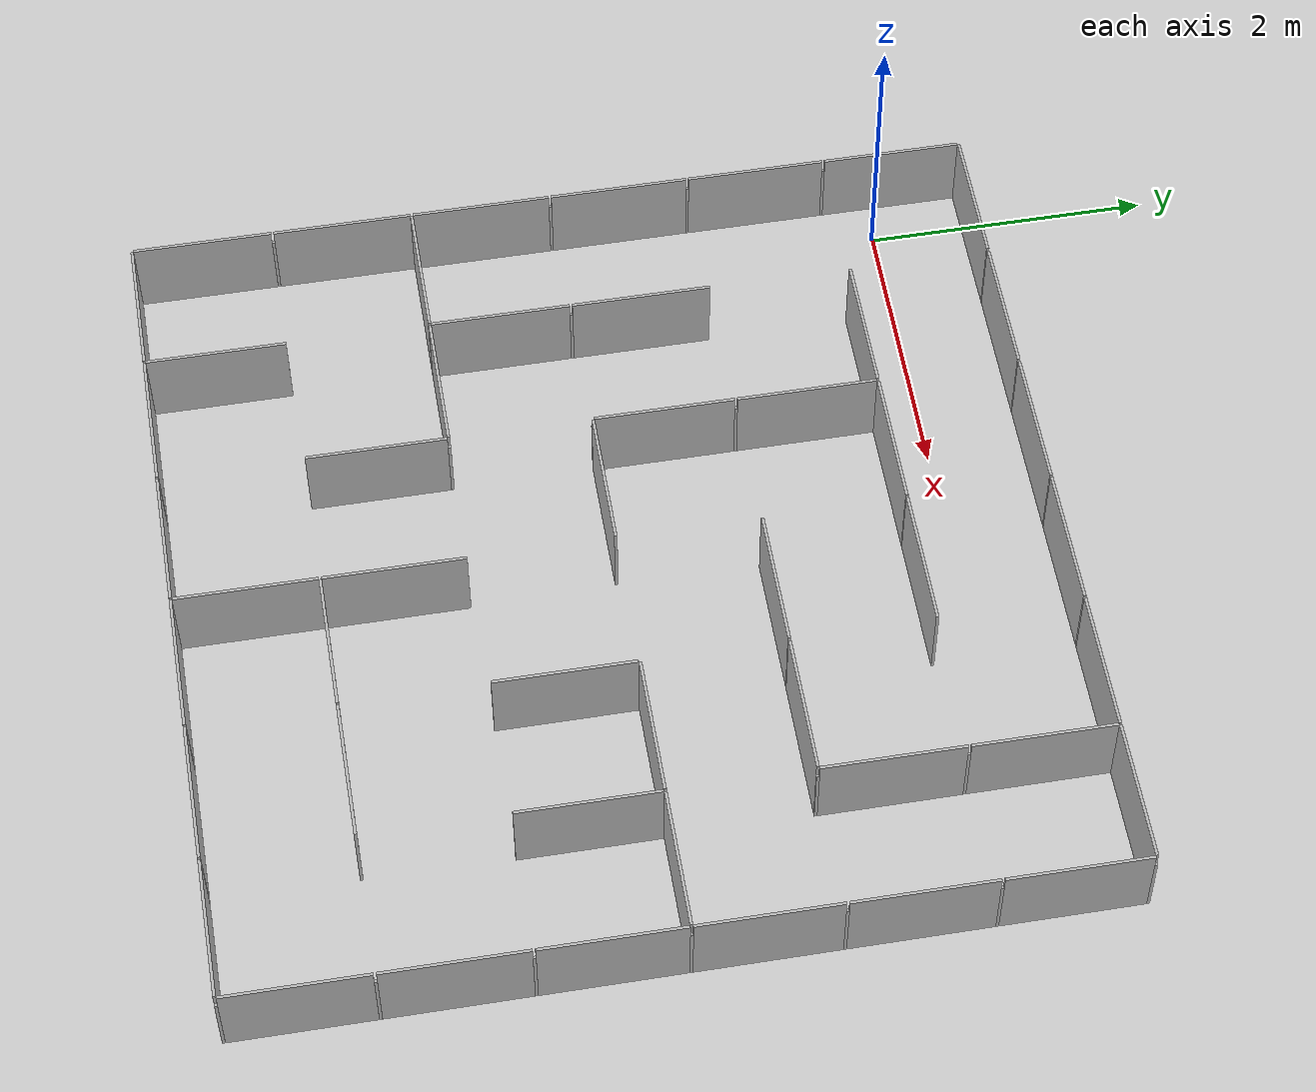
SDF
<sdf version="1.7">
 <world name="default">
  <light name="sun" type="directional">
   <pose>0 0 10 0 -0 0</pose>
   <diffuse>0.8 0.8 0.8 1</diffuse>
   <specular>0.2 0.2 0.2 1</specular>
   <attenuation>
    <range>1000</range>
    <constant>0.9</constant>
    <linear>0.01</linear>
    <quadratic>0.001</quadratic>
   </attenuation>
   <direction>-0.5 0.1 -0.9</direction>
   <spot><inner_angle>0</inner_angle><outer_angle>0</outer_angle><falloff>0</falloff></spot>
  </light>
  <model name="ground_plane">
   <static>1</static>
   <link name="link">
    <collision name="collision">
     <geometry><plane><normal>0 0 1</normal><size>100 100</size></plane></geometry>
     <surface>
      <contact><collide_bitmask>65535</collide_bitmask></contact>
      <friction><ode><mu>100</mu><mu2>50</mu2></ode></friction>
     </surface>
    </collision>
    <visual name="visual">
     <cast_shadows>0</cast_shadows>
     <geometry><plane><normal>0 0 1</normal><size>100 100</size></plane></geometry>
     <material>
      <script><uri>file://media/materials/scripts/gazebo.material</uri><name>Gazebo/Grey</name></script>
     </material>
    </visual>
   </link>
  </model>
  <gravity>0 0 -9.8</gravity>
  <magnetic_field>6e-06 2.3e-05 -4.2e-05</magnetic_field>
  <atmosphere type="adiabatic"/>
  <physics type="ode">
   <max_step_size>0.001</max_step_size>
   <real_time_factor>1</real_time_factor>
   <real_time_update_rate>1000</real_time_update_rate>
  </physics>
  <scene><ambient>0.4 0.4 0.4 1</ambient><background>0.7 0.7 0.7 1</background><shadows>1</shadows></scene>
  <spherical_coordinates>
   <surface_model>EARTH_WGS84</surface_model>
   <latitude_deg>0</latitude_deg>
   <longitude_deg>0</longitude_deg>
   <elevation>0</elevation>
   <heading_deg>0</heading_deg>
  </spherical_coordinates>
  <model name="maze_4_metal_6x6">
   <frame name="metal_plate_0_0_b::__model__" attached_to="metal_plate_0_0_b::main">
    <pose relative_to="__model__">0 0 0 0 -0 1.571</pose>
   </frame>
   <static>1</static>
   <link name="metal_plate_0_0_b::main">
    <pose relative_to="metal_plate_0_0_b::__model__">0 0 0 0 -0 0</pose>
    <collision name="collision">
     <pose>0 -0.5 0.3 -1.571 -0 -1.571</pose>
     <geometry><box><size>0.98 0.6 0.02</size></box></geometry>
    </collision>
    <visual name="visual">
     <pose>0.01 -0.01 0 3.14159 -1.57059 3.14159</pose>
     <geometry><mesh><scale>1 1 1</scale><uri>model://metal_plate/meshes/metal_plate.dae</uri></mesh></geometry>
    </visual>
   </link>
   <frame name="metal_joint_0_0_b::__model__" attached_to="metal_joint_0_0_b::link">
    <pose relative_to="__model__">0 0 0 0 -0 0</pose>
   </frame>
   <static>1</static>
   <link name="metal_joint_0_0_b::link">
    <pose relative_to="metal_joint_0_0_b::__model__">0 0 0.25 0 -0 0</pose>
    <collision name="metal_joint_01"><geometry><box><size>0.02 0.02 0.5</size></box></geometry></collision>
    <visual name="visual_metal_joint_0">
     <geometry><box><size>0.02 0.02 0.5</size></box></geometry>
     <material>
      <script>
       <uri>model://metal_joint/materials/scripts</uri>
       <uri>model://metal_joint/materials/textures</uri>
       <name>metal_joint</name>
      </script>
     </material>
    </visual>
   </link>
   <frame name="metal_plate_1_0_b::__model__" attached_to="metal_plate_1_0_b::main">
    <pose relative_to="__model__">1 0 0 0 -0 1.571</pose>
   </frame>
   <static>1</static>
   <link name="metal_plate_1_0_b::main">
    <pose relative_to="metal_plate_1_0_b::__model__">0 0 0 0 -0 0</pose>
    <collision name="collision">
     <pose>0 -0.5 0.3 -1.571 -0 -1.571</pose>
     <geometry><box><size>0.98 0.6 0.02</size></box></geometry>
    </collision>
    <visual name="visual">
     <pose>0.01 -0.01 0 3.14159 -1.57059 3.14159</pose>
     <geometry><mesh><scale>1 1 1</scale><uri>model://metal_plate/meshes/metal_plate.dae</uri></mesh></geometry>
    </visual>
   </link>
   <frame name="metal_joint_1_0_b::__model__" attached_to="metal_joint_1_0_b::link">
    <pose relative_to="__model__">1 0 0 0 -0 0</pose>
   </frame>
   <static>1</static>
   <link name="metal_joint_1_0_b::link">
    <pose relative_to="metal_joint_1_0_b::__model__">0 0 0.25 0 -0 0</pose>
    <collision name="metal_joint_01"><geometry><box><size>0.02 0.02 0.5</size></box></geometry></collision>
    <visual name="visual_metal_joint_0">
     <geometry><box><size>0.02 0.02 0.5</size></box></geometry>
     <material>
      <script>
       <uri>model://metal_joint/materials/scripts</uri>
       <uri>model://metal_joint/materials/textures</uri>
       <name>metal_joint</name>
      </script>
     </material>
    </visual>
   </link>
   <frame name="metal_plate_2_0_b::__model__" attached_to="metal_plate_2_0_b::main">
    <pose relative_to="__model__">2 0 0 0 -0 1.571</pose>
   </frame>
   <static>1</static>
   <link name="metal_plate_2_0_b::main">
    <pose relative_to="metal_plate_2_0_b::__model__">0 0 0 0 -0 0</pose>
    <collision name="collision">
     <pose>0 -0.5 0.3 -1.571 -0 -1.571</pose>
     <geometry><box><size>0.98 0.6 0.02</size></box></geometry>
    </collision>
    <visual name="visual">
     <pose>0.01 -0.01 0 3.14159 -1.57059 3.14159</pose>
     <geometry><mesh><scale>1 1 1</scale><uri>model://metal_plate/meshes/metal_plate.dae</uri></mesh></geometry>
    </visual>
   </link>
   <frame name="metal_joint_2_0_b::__model__" attached_to="metal_joint_2_0_b::link">
    <pose relative_to="__model__">2 0 0 0 -0 0</pose>
   </frame>
   <static>1</static>
   <link name="metal_joint_2_0_b::link">
    <pose relative_to="metal_joint_2_0_b::__model__">0 0 0.25 0 -0 0</pose>
    <collision name="metal_joint_01"><geometry><box><size>0.02 0.02 0.5</size></box></geometry></collision>
    <visual name="visual_metal_joint_0">
     <geometry><box><size>0.02 0.02 0.5</size></box></geometry>
     <material>
      <script>
       <uri>model://metal_joint/materials/scripts</uri>
       <uri>model://metal_joint/materials/textures</uri>
       <name>metal_joint</name>
      </script>
     </material>
    </visual>
   </link>
   <frame name="metal_plate_3_0_b::__model__" attached_to="metal_plate_3_0_b::main">
    <pose relative_to="__model__">3 0 0 0 -0 1.571</pose>
   </frame>
   <static>1</static>
   <link name="metal_plate_3_0_b::main">
    <pose relative_to="metal_plate_3_0_b::__model__">0 0 0 0 -0 0</pose>
    <collision name="collision">
     <pose>0 -0.5 0.3 -1.571 -0 -1.571</pose>
     <geometry><box><size>0.98 0.6 0.02</size></box></geometry>
    </collision>
    <visual name="visual">
     <pose>0.01 -0.01 0 3.14159 -1.57059 3.14159</pose>
     <geometry><mesh><scale>1 1 1</scale><uri>model://metal_plate/meshes/metal_plate.dae</uri></mesh></geometry>
    </visual>
   </link>
   <frame name="metal_joint_3_0_b::__model__" attached_to="metal_joint_3_0_b::link">
    <pose relative_to="__model__">3 0 0 0 -0 0</pose>
   </frame>
   <static>1</static>
   <link name="metal_joint_3_0_b::link">
    <pose relative_to="metal_joint_3_0_b::__model__">0 0 0.25 0 -0 0</pose>
    <collision name="metal_joint_01"><geometry><box><size>0.02 0.02 0.5</size></box></geometry></collision>
    <visual name="visual_metal_joint_0">
     <geometry><box><size>0.02 0.02 0.5</size></box></geometry>
     <material>
      <script>
       <uri>model://metal_joint/materials/scripts</uri>
       <uri>model://metal_joint/materials/textures</uri>
       <name>metal_joint</name>
      </script>
     </material>
    </visual>
   </link>
   <frame name="metal_plate_4_0_b::__model__" attached_to="metal_plate_4_0_b::main">
    <pose relative_to="__model__">4 0 0 0 -0 1.571</pose>
   </frame>
   <static>1</static>
   <link name="metal_plate_4_0_b::main">
    <pose relative_to="metal_plate_4_0_b::__model__">0 0 0 0 -0 0</pose>
    <collision name="collision">
     <pose>0 -0.5 0.3 -1.571 -0 -1.571</pose>
     <geometry><box><size>0.98 0.6 0.02</size></box></geometry>
    </collision>
    <visual name="visual">
     <pose>0.01 -0.01 0 3.14159 -1.57059 3.14159</pose>
     <geometry><mesh><scale>1 1 1</scale><uri>model://metal_plate/meshes/metal_plate.dae</uri></mesh></geometry>
    </visual>
   </link>
   <frame name="metal_joint_4_0_b::__model__" attached_to="metal_joint_4_0_b::link">
    <pose relative_to="__model__">4 0 0 0 -0 0</pose>
   </frame>
   <static>1</static>
   <link name="metal_joint_4_0_b::link">
    <pose relative_to="metal_joint_4_0_b::__model__">0 0 0.25 0 -0 0</pose>
    <collision name="metal_joint_01"><geometry><box><size>0.02 0.02 0.5</size></box></geometry></collision>
    <visual name="visual_metal_joint_0">
     <geometry><box><size>0.02 0.02 0.5</size></box></geometry>
     <material>
      <script>
       <uri>model://metal_joint/materials/scripts</uri>
       <uri>model://metal_joint/materials/textures</uri>
       <name>metal_joint</name>
      </script>
     </material>
    </visual>
   </link>
   <frame name="metal_plate_5_0_b::__model__" attached_to="metal_plate_5_0_b::main">
    <pose relative_to="__model__">5 0 0 0 -0 1.571</pose>
   </frame>
   <static>1</static>
   <link name="metal_plate_5_0_b::main">
    <pose relative_to="metal_plate_5_0_b::__model__">0 0 0 0 -0 0</pose>
    <collision name="collision">
     <pose>0 -0.5 0.3 -1.571 -0 -1.571</pose>
     <geometry><box><size>0.98 0.6 0.02</size></box></geometry>
    </collision>
    <visual name="visual">
     <pose>0.01 -0.01 0 3.14159 -1.57059 3.14159</pose>
     <geometry><mesh><scale>1 1 1</scale><uri>model://metal_plate/meshes/metal_plate.dae</uri></mesh></geometry>
    </visual>
   </link>
   <frame name="metal_joint_5_0_b::__model__" attached_to="metal_joint_5_0_b::link">
    <pose relative_to="__model__">5 0 0 0 -0 0</pose>
   </frame>
   <static>1</static>
   <link name="metal_joint_5_0_b::link">
    <pose relative_to="metal_joint_5_0_b::__model__">0 0 0.25 0 -0 0</pose>
    <collision name="metal_joint_01"><geometry><box><size>0.02 0.02 0.5</size></box></geometry></collision>
    <visual name="visual_metal_joint_0">
     <geometry><box><size>0.02 0.02 0.5</size></box></geometry>
     <material>
      <script>
       <uri>model://metal_joint/materials/scripts</uri>
       <uri>model://metal_joint/materials/textures</uri>
       <name>metal_joint</name>
      </script>
     </material>
    </visual>
   </link>
   <frame name="metal_plate_0_6_b::__model__" attached_to="metal_plate_0_6_b::main">
    <pose relative_to="__model__">0 6 0 0 -0 1.571</pose>
   </frame>
   <static>1</static>
   <link name="metal_plate_0_6_b::main">
    <pose relative_to="metal_plate_0_6_b::__model__">0 0 0 0 -0 0</pose>
    <collision name="collision">
     <pose>0 -0.5 0.3 -1.571 -0 -1.571</pose>
     <geometry><box><size>0.98 0.6 0.02</size></box></geometry>
    </collision>
    <visual name="visual">
     <pose>0.01 -0.01 0 3.14159 -1.57059 3.14159</pose>
     <geometry><mesh><scale>1 1 1</scale><uri>model://metal_plate/meshes/metal_plate.dae</uri></mesh></geometry>
    </visual>
   </link>
   <frame name="metal_joint_0_6_b::__model__" attached_to="metal_joint_0_6_b::link">
    <pose relative_to="__model__">0 6 0 0 -0 0</pose>
   </frame>
   <static>1</static>
   <link name="metal_joint_0_6_b::link">
    <pose relative_to="metal_joint_0_6_b::__model__">0 0 0.25 0 -0 0</pose>
    <collision name="metal_joint_01"><geometry><box><size>0.02 0.02 0.5</size></box></geometry></collision>
    <visual name="visual_metal_joint_0">
     <geometry><box><size>0.02 0.02 0.5</size></box></geometry>
     <material>
      <script>
       <uri>model://metal_joint/materials/scripts</uri>
       <uri>model://metal_joint/materials/textures</uri>
       <name>metal_joint</name>
      </script>
     </material>
    </visual>
   </link>
   <frame name="metal_plate_1_6_b::__model__" attached_to="metal_plate_1_6_b::main">
    <pose relative_to="__model__">1 6 0 0 -0 1.571</pose>
   </frame>
   <static>1</static>
   <link name="metal_plate_1_6_b::main">
    <pose relative_to="metal_plate_1_6_b::__model__">0 0 0 0 -0 0</pose>
    <collision name="collision">
     <pose>0 -0.5 0.3 -1.571 -0 -1.571</pose>
     <geometry><box><size>0.98 0.6 0.02</size></box></geometry>
    </collision>
    <visual name="visual">
     <pose>0.01 -0.01 0 3.14159 -1.57059 3.14159</pose>
     <geometry><mesh><scale>1 1 1</scale><uri>model://metal_plate/meshes/metal_plate.dae</uri></mesh></geometry>
    </visual>
   </link>
   <frame name="metal_joint_1_6_b::__model__" attached_to="metal_joint_1_6_b::link">
    <pose relative_to="__model__">1 6 0 0 -0 0</pose>
   </frame>
   <static>1</static>
   <link name="metal_joint_1_6_b::link">
    <pose relative_to="metal_joint_1_6_b::__model__">0 0 0.25 0 -0 0</pose>
    <collision name="metal_joint_01"><geometry><box><size>0.02 0.02 0.5</size></box></geometry></collision>
    <visual name="visual_metal_joint_0">
     <geometry><box><size>0.02 0.02 0.5</size></box></geometry>
     <material>
      <script>
       <uri>model://metal_joint/materials/scripts</uri>
       <uri>model://metal_joint/materials/textures</uri>
       <name>metal_joint</name>
      </script>
     </material>
    </visual>
   </link>
   <frame name="metal_plate_2_6_b::__model__" attached_to="metal_plate_2_6_b::main">
    <pose relative_to="__model__">2 6 0 0 -0 1.571</pose>
   </frame>
   <static>1</static>
   <link name="metal_plate_2_6_b::main">
    <pose relative_to="metal_plate_2_6_b::__model__">0 0 0 0 -0 0</pose>
    <collision name="collision">
     <pose>0 -0.5 0.3 -1.571 -0 -1.571</pose>
     <geometry><box><size>0.98 0.6 0.02</size></box></geometry>
    </collision>
    <visual name="visual">
     <pose>0.01 -0.01 0 3.14159 -1.57059 3.14159</pose>
     <geometry><mesh><scale>1 1 1</scale><uri>model://metal_plate/meshes/metal_plate.dae</uri></mesh></geometry>
    </visual>
   </link>
   <frame name="metal_joint_2_6_b::__model__" attached_to="metal_joint_2_6_b::link">
    <pose relative_to="__model__">2 6 0 0 -0 0</pose>
   </frame>
   <static>1</static>
   <link name="metal_joint_2_6_b::link">
    <pose relative_to="metal_joint_2_6_b::__model__">0 0 0.25 0 -0 0</pose>
    <collision name="metal_joint_01"><geometry><box><size>0.02 0.02 0.5</size></box></geometry></collision>
    <visual name="visual_metal_joint_0">
     <geometry><box><size>0.02 0.02 0.5</size></box></geometry>
     <material>
      <script>
       <uri>model://metal_joint/materials/scripts</uri>
       <uri>model://metal_joint/materials/textures</uri>
       <name>metal_joint</name>
      </script>
     </material>
    </visual>
   </link>
   <frame name="metal_plate_3_6_b::__model__" attached_to="metal_plate_3_6_b::main">
    <pose relative_to="__model__">3 6 0 0 -0 1.571</pose>
   </frame>
   <static>1</static>
   <link name="metal_plate_3_6_b::main">
    <pose relative_to="metal_plate_3_6_b::__model__">0 0 0 0 -0 0</pose>
    <collision name="collision">
     <pose>0 -0.5 0.3 -1.571 -0 -1.571</pose>
     <geometry><box><size>0.98 0.6 0.02</size></box></geometry>
    </collision>
    <visual name="visual">
     <pose>0.01 -0.01 0 3.14159 -1.57059 3.14159</pose>
     <geometry><mesh><scale>1 1 1</scale><uri>model://metal_plate/meshes/metal_plate.dae</uri></mesh></geometry>
    </visual>
   </link>
   <frame name="metal_joint_3_6_b::__model__" attached_to="metal_joint_3_6_b::link">
    <pose relative_to="__model__">3 6 0 0 -0 0</pose>
   </frame>
   <static>1</static>
   <link name="metal_joint_3_6_b::link">
    <pose relative_to="metal_joint_3_6_b::__model__">0 0 0.25 0 -0 0</pose>
    <collision name="metal_joint_01"><geometry><box><size>0.02 0.02 0.5</size></box></geometry></collision>
    <visual name="visual_metal_joint_0">
     <geometry><box><size>0.02 0.02 0.5</size></box></geometry>
     <material>
      <script>
       <uri>model://metal_joint/materials/scripts</uri>
       <uri>model://metal_joint/materials/textures</uri>
       <name>metal_joint</name>
      </script>
     </material>
    </visual>
   </link>
   <frame name="metal_plate_4_6_b::__model__" attached_to="metal_plate_4_6_b::main">
    <pose relative_to="__model__">4 6 0 0 -0 1.571</pose>
   </frame>
   <static>1</static>
   <link name="metal_plate_4_6_b::main">
    <pose relative_to="metal_plate_4_6_b::__model__">0 0 0 0 -0 0</pose>
    <collision name="collision">
     <pose>0 -0.5 0.3 -1.571 -0 -1.571</pose>
     <geometry><box><size>0.98 0.6 0.02</size></box></geometry>
    </collision>
    <visual name="visual">
     <pose>0.01 -0.01 0 3.14159 -1.57059 3.14159</pose>
     <geometry><mesh><scale>1 1 1</scale><uri>model://metal_plate/meshes/metal_plate.dae</uri></mesh></geometry>
    </visual>
   </link>
   <frame name="metal_joint_4_6_b::__model__" attached_to="metal_joint_4_6_b::link">
    <pose relative_to="__model__">4 6 0 0 -0 0</pose>
   </frame>
   <static>1</static>
   <link name="metal_joint_4_6_b::link">
    <pose relative_to="metal_joint_4_6_b::__model__">0 0 0.25 0 -0 0</pose>
    <collision name="metal_joint_01"><geometry><box><size>0.02 0.02 0.5</size></box></geometry></collision>
    <visual name="visual_metal_joint_0">
     <geometry><box><size>0.02 0.02 0.5</size></box></geometry>
     <material>
      <script>
       <uri>model://metal_joint/materials/scripts</uri>
       <uri>model://metal_joint/materials/textures</uri>
       <name>metal_joint</name>
      </script>
     </material>
    </visual>
   </link>
   <frame name="metal_plate_5_6_b::__model__" attached_to="metal_plate_5_6_b::main">
    <pose relative_to="__model__">5 6 0 0 -0 1.571</pose>
   </frame>
   <static>1</static>
   <link name="metal_plate_5_6_b::main">
    <pose relative_to="metal_plate_5_6_b::__model__">0 0 0 0 -0 0</pose>
    <collision name="collision">
     <pose>0 -0.5 0.3 -1.571 -0 -1.571</pose>
     <geometry><box><size>0.98 0.6 0.02</size></box></geometry>
    </collision>
    <visual name="visual">
     <pose>0.01 -0.01 0 3.14159 -1.57059 3.14159</pose>
     <geometry><mesh><scale>1 1 1</scale><uri>model://metal_plate/meshes/metal_plate.dae</uri></mesh></geometry>
    </visual>
   </link>
   <frame name="metal_joint_5_6_b::__model__" attached_to="metal_joint_5_6_b::link">
    <pose relative_to="__model__">5 6 0 0 -0 0</pose>
   </frame>
   <static>1</static>
   <link name="metal_joint_5_6_b::link">
    <pose relative_to="metal_joint_5_6_b::__model__">0 0 0.25 0 -0 0</pose>
    <collision name="metal_joint_01"><geometry><box><size>0.02 0.02 0.5</size></box></geometry></collision>
    <visual name="visual_metal_joint_0">
     <geometry><box><size>0.02 0.02 0.5</size></box></geometry>
     <material>
      <script>
       <uri>model://metal_joint/materials/scripts</uri>
       <uri>model://metal_joint/materials/textures</uri>
       <name>metal_joint</name>
      </script>
     </material>
    </visual>
   </link>
   <frame name="metal_plate_0_0_a::__model__" attached_to="metal_plate_0_0_a::main">
    <pose relative_to="__model__">0 0 0 0 -0 3.14159</pose>
   </frame>
   <static>1</static>
   <link name="metal_plate_0_0_a::main">
    <pose relative_to="metal_plate_0_0_a::__model__">0 0 0 0 -0 0</pose>
    <collision name="collision">
     <pose>0 -0.5 0.3 -1.571 -0 -1.571</pose>
     <geometry><box><size>0.98 0.6 0.02</size></box></geometry>
    </collision>
    <visual name="visual">
     <pose>0.01 -0.01 0 3.14159 -1.57059 3.14159</pose>
     <geometry><mesh><scale>1 1 1</scale><uri>model://metal_plate/meshes/metal_plate.dae</uri></mesh></geometry>
    </visual>
   </link>
   <frame name="metal_joint_6_6_a::__model__" attached_to="metal_joint_6_6_a::link">
    <pose relative_to="__model__">6 6 0 0 -0 0</pose>
   </frame>
   <static>1</static>
   <link name="metal_joint_6_6_a::link">
    <pose relative_to="metal_joint_6_6_a::__model__">0 0 0.25 0 -0 0</pose>
    <collision name="metal_joint_01"><geometry><box><size>0.02 0.02 0.5</size></box></geometry></collision>
    <visual name="visual_metal_joint_0">
     <geometry><box><size>0.02 0.02 0.5</size></box></geometry>
     <material>
      <script>
       <uri>model://metal_joint/materials/scripts</uri>
       <uri>model://metal_joint/materials/textures</uri>
       <name>metal_joint</name>
      </script>
     </material>
    </visual>
   </link>
   <frame name="metal_plate_0_1_a::__model__" attached_to="metal_plate_0_1_a::main">
    <pose relative_to="__model__">0 1 0 0 -0 3.14159</pose>
   </frame>
   <static>1</static>
   <link name="metal_plate_0_1_a::main">
    <pose relative_to="metal_plate_0_1_a::__model__">0 0 0 0 -0 0</pose>
    <collision name="collision">
     <pose>0 -0.5 0.3 -1.571 -0 -1.571</pose>
     <geometry><box><size>0.98 0.6 0.02</size></box></geometry>
    </collision>
    <visual name="visual">
     <pose>0.01 -0.01 0 3.14159 -1.57059 3.14159</pose>
     <geometry><mesh><scale>1 1 1</scale><uri>model://metal_plate/meshes/metal_plate.dae</uri></mesh></geometry>
    </visual>
   </link>
   <frame name="metal_joint_0_1_a::__model__" attached_to="metal_joint_0_1_a::link">
    <pose relative_to="__model__">0 1 0 0 -0 0</pose>
   </frame>
   <static>1</static>
   <link name="metal_joint_0_1_a::link">
    <pose relative_to="metal_joint_0_1_a::__model__">0 0 0.25 0 -0 0</pose>
    <collision name="metal_joint_01"><geometry><box><size>0.02 0.02 0.5</size></box></geometry></collision>
    <visual name="visual_metal_joint_0">
     <geometry><box><size>0.02 0.02 0.5</size></box></geometry>
     <material>
      <script>
       <uri>model://metal_joint/materials/scripts</uri>
       <uri>model://metal_joint/materials/textures</uri>
       <name>metal_joint</name>
      </script>
     </material>
    </visual>
   </link>
   <frame name="metal_plate_0_2_a::__model__" attached_to="metal_plate_0_2_a::main">
    <pose relative_to="__model__">0 2 0 0 -0 3.14159</pose>
   </frame>
   <static>1</static>
   <link name="metal_plate_0_2_a::main">
    <pose relative_to="metal_plate_0_2_a::__model__">0 0 0 0 -0 0</pose>
    <collision name="collision">
     <pose>0 -0.5 0.3 -1.571 -0 -1.571</pose>
     <geometry><box><size>0.98 0.6 0.02</size></box></geometry>
    </collision>
    <visual name="visual">
     <pose>0.01 -0.01 0 3.14159 -1.57059 3.14159</pose>
     <geometry><mesh><scale>1 1 1</scale><uri>model://metal_plate/meshes/metal_plate.dae</uri></mesh></geometry>
    </visual>
   </link>
   <frame name="metal_joint_0_2_a::__model__" attached_to="metal_joint_0_2_a::link">
    <pose relative_to="__model__">0 2 0 0 -0 0</pose>
   </frame>
   <static>1</static>
   <link name="metal_joint_0_2_a::link">
    <pose relative_to="metal_joint_0_2_a::__model__">0 0 0.25 0 -0 0</pose>
    <collision name="metal_joint_01"><geometry><box><size>0.02 0.02 0.5</size></box></geometry></collision>
    <visual name="visual_metal_joint_0">
     <geometry><box><size>0.02 0.02 0.5</size></box></geometry>
     <material>
      <script>
       <uri>model://metal_joint/materials/scripts</uri>
       <uri>model://metal_joint/materials/textures</uri>
       <name>metal_joint</name>
      </script>
     </material>
    </visual>
   </link>
   <frame name="metal_plate_0_3_a::__model__" attached_to="metal_plate_0_3_a::main">
    <pose relative_to="__model__">0 3 0 0 -0 3.14159</pose>
   </frame>
   <static>1</static>
   <link name="metal_plate_0_3_a::main">
    <pose relative_to="metal_plate_0_3_a::__model__">0 0 0 0 -0 0</pose>
    <collision name="collision">
     <pose>0 -0.5 0.3 -1.571 -0 -1.571</pose>
     <geometry><box><size>0.98 0.6 0.02</size></box></geometry>
    </collision>
    <visual name="visual">
     <pose>0.01 -0.01 0 3.14159 -1.57059 3.14159</pose>
     <geometry><mesh><scale>1 1 1</scale><uri>model://metal_plate/meshes/metal_plate.dae</uri></mesh></geometry>
    </visual>
   </link>
   <frame name="metal_joint_0_3_a::__model__" attached_to="metal_joint_0_3_a::link">
    <pose relative_to="__model__">0 3 0 0 -0 0</pose>
   </frame>
   <static>1</static>
   <link name="metal_joint_0_3_a::link">
    <pose relative_to="metal_joint_0_3_a::__model__">0 0 0.25 0 -0 0</pose>
    <collision name="metal_joint_01"><geometry><box><size>0.02 0.02 0.5</size></box></geometry></collision>
    <visual name="visual_metal_joint_0">
     <geometry><box><size>0.02 0.02 0.5</size></box></geometry>
     <material>
      <script>
       <uri>model://metal_joint/materials/scripts</uri>
       <uri>model://metal_joint/materials/textures</uri>
       <name>metal_joint</name>
      </script>
     </material>
    </visual>
   </link>
   <frame name="metal_plate_0_4_a::__model__" attached_to="metal_plate_0_4_a::main">
    <pose relative_to="__model__">0 4 0 0 -0 3.14159</pose>
   </frame>
   <static>1</static>
   <link name="metal_plate_0_4_a::main">
    <pose relative_to="metal_plate_0_4_a::__model__">0 0 0 0 -0 0</pose>
    <collision name="collision">
     <pose>0 -0.5 0.3 -1.571 -0 -1.571</pose>
     <geometry><box><size>0.98 0.6 0.02</size></box></geometry>
    </collision>
    <visual name="visual">
     <pose>0.01 -0.01 0 3.14159 -1.57059 3.14159</pose>
     <geometry><mesh><scale>1 1 1</scale><uri>model://metal_plate/meshes/metal_plate.dae</uri></mesh></geometry>
    </visual>
   </link>
   <frame name="metal_joint_0_4_a::__model__" attached_to="metal_joint_0_4_a::link">
    <pose relative_to="__model__">0 4 0 0 -0 0</pose>
   </frame>
   <static>1</static>
   <link name="metal_joint_0_4_a::link">
    <pose relative_to="metal_joint_0_4_a::__model__">0 0 0.25 0 -0 0</pose>
    <collision name="metal_joint_01"><geometry><box><size>0.02 0.02 0.5</size></box></geometry></collision>
    <visual name="visual_metal_joint_0">
     <geometry><box><size>0.02 0.02 0.5</size></box></geometry>
     <material>
      <script>
       <uri>model://metal_joint/materials/scripts</uri>
       <uri>model://metal_joint/materials/textures</uri>
       <name>metal_joint</name>
      </script>
     </material>
    </visual>
   </link>
   <frame name="metal_plate_0_5_a::__model__" attached_to="metal_plate_0_5_a::main">
    <pose relative_to="__model__">0 5 0 0 -0 3.14159</pose>
   </frame>
   <static>1</static>
   <link name="metal_plate_0_5_a::main">
    <pose relative_to="metal_plate_0_5_a::__model__">0 0 0 0 -0 0</pose>
    <collision name="collision">
     <pose>0 -0.5 0.3 -1.571 -0 -1.571</pose>
     <geometry><box><size>0.98 0.6 0.02</size></box></geometry>
    </collision>
    <visual name="visual">
     <pose>0.01 -0.01 0 3.14159 -1.57059 3.14159</pose>
     <geometry><mesh><scale>1 1 1</scale><uri>model://metal_plate/meshes/metal_plate.dae</uri></mesh></geometry>
    </visual>
   </link>
   <frame name="metal_joint_0_5_a::__model__" attached_to="metal_joint_0_5_a::link">
    <pose relative_to="__model__">0 5 0 0 -0 0</pose>
   </frame>
   <static>1</static>
   <link name="metal_joint_0_5_a::link">
    <pose relative_to="metal_joint_0_5_a::__model__">0 0 0.25 0 -0 0</pose>
    <collision name="metal_joint_01"><geometry><box><size>0.02 0.02 0.5</size></box></geometry></collision>
    <visual name="visual_metal_joint_0">
     <geometry><box><size>0.02 0.02 0.5</size></box></geometry>
     <material>
      <script>
       <uri>model://metal_joint/materials/scripts</uri>
       <uri>model://metal_joint/materials/textures</uri>
       <name>metal_joint</name>
      </script>
     </material>
    </visual>
   </link>
   <frame name="metal_plate_6_0_a::__model__" attached_to="metal_plate_6_0_a::main">
    <pose relative_to="__model__">6 0 0 0 -0 3.14159</pose>
   </frame>
   <static>1</static>
   <link name="metal_plate_6_0_a::main">
    <pose relative_to="metal_plate_6_0_a::__model__">0 0 0 0 -0 0</pose>
    <collision name="collision">
     <pose>0 -0.5 0.3 -1.571 -0 -1.571</pose>
     <geometry><box><size>0.98 0.6 0.02</size></box></geometry>
    </collision>
    <visual name="visual">
     <pose>0.01 -0.01 0 3.14159 -1.57059 3.14159</pose>
     <geometry><mesh><scale>1 1 1</scale><uri>model://metal_plate/meshes/metal_plate.dae</uri></mesh></geometry>
    </visual>
   </link>
   <frame name="metal_joint_6_0_a::__model__" attached_to="metal_joint_6_0_a::link">
    <pose relative_to="__model__">6 0 0 0 -0 0</pose>
   </frame>
   <static>1</static>
   <link name="metal_joint_6_0_a::link">
    <pose relative_to="metal_joint_6_0_a::__model__">0 0 0.25 0 -0 0</pose>
    <collision name="metal_joint_01"><geometry><box><size>0.02 0.02 0.5</size></box></geometry></collision>
    <visual name="visual_metal_joint_0">
     <geometry><box><size>0.02 0.02 0.5</size></box></geometry>
     <material>
      <script>
       <uri>model://metal_joint/materials/scripts</uri>
       <uri>model://metal_joint/materials/textures</uri>
       <name>metal_joint</name>
      </script>
     </material>
    </visual>
   </link>
   <frame name="metal_plate_6_1_a::__model__" attached_to="metal_plate_6_1_a::main">
    <pose relative_to="__model__">6 1 0 0 -0 3.14159</pose>
   </frame>
   <static>1</static>
   <link name="metal_plate_6_1_a::main">
    <pose relative_to="metal_plate_6_1_a::__model__">0 0 0 0 -0 0</pose>
    <collision name="collision">
     <pose>0 -0.5 0.3 -1.571 -0 -1.571</pose>
     <geometry><box><size>0.98 0.6 0.02</size></box></geometry>
    </collision>
    <visual name="visual">
     <pose>0.01 -0.01 0 3.14159 -1.57059 3.14159</pose>
     <geometry><mesh><scale>1 1 1</scale><uri>model://metal_plate/meshes/metal_plate.dae</uri></mesh></geometry>
    </visual>
   </link>
   <frame name="metal_joint_6_1_a::__model__" attached_to="metal_joint_6_1_a::link">
    <pose relative_to="__model__">6 1 0 0 -0 0</pose>
   </frame>
   <static>1</static>
   <link name="metal_joint_6_1_a::link">
    <pose relative_to="metal_joint_6_1_a::__model__">0 0 0.25 0 -0 0</pose>
    <collision name="metal_joint_01"><geometry><box><size>0.02 0.02 0.5</size></box></geometry></collision>
    <visual name="visual_metal_joint_0">
     <geometry><box><size>0.02 0.02 0.5</size></box></geometry>
     <material>
      <script>
       <uri>model://metal_joint/materials/scripts</uri>
       <uri>model://metal_joint/materials/textures</uri>
       <name>metal_joint</name>
      </script>
     </material>
    </visual>
   </link>
   <frame name="metal_plate_6_2_a::__model__" attached_to="metal_plate_6_2_a::main">
    <pose relative_to="__model__">6 2 0 0 -0 3.14159</pose>
   </frame>
   <static>1</static>
   <link name="metal_plate_6_2_a::main">
    <pose relative_to="metal_plate_6_2_a::__model__">0 0 0 0 -0 0</pose>
    <collision name="collision">
     <pose>0 -0.5 0.3 -1.571 -0 -1.571</pose>
     <geometry><box><size>0.98 0.6 0.02</size></box></geometry>
    </collision>
    <visual name="visual">
     <pose>0.01 -0.01 0 3.14159 -1.57059 3.14159</pose>
     <geometry><mesh><scale>1 1 1</scale><uri>model://metal_plate/meshes/metal_plate.dae</uri></mesh></geometry>
    </visual>
   </link>
   <frame name="metal_joint_6_2_a::__model__" attached_to="metal_joint_6_2_a::link">
    <pose relative_to="__model__">6 2 0 0 -0 0</pose>
   </frame>
   <static>1</static>
   <link name="metal_joint_6_2_a::link">
    <pose relative_to="metal_joint_6_2_a::__model__">0 0 0.25 0 -0 0</pose>
    <collision name="metal_joint_01"><geometry><box><size>0.02 0.02 0.5</size></box></geometry></collision>
    <visual name="visual_metal_joint_0">
     <geometry><box><size>0.02 0.02 0.5</size></box></geometry>
     <material>
      <script>
       <uri>model://metal_joint/materials/scripts</uri>
       <uri>model://metal_joint/materials/textures</uri>
       <name>metal_joint</name>
      </script>
     </material>
    </visual>
   </link>
   <frame name="metal_plate_6_3_a::__model__" attached_to="metal_plate_6_3_a::main">
    <pose relative_to="__model__">6 3 0 0 -0 3.14159</pose>
   </frame>
   <static>1</static>
   <link name="metal_plate_6_3_a::main">
    <pose relative_to="metal_plate_6_3_a::__model__">0 0 0 0 -0 0</pose>
    <collision name="collision">
     <pose>0 -0.5 0.3 -1.571 -0 -1.571</pose>
     <geometry><box><size>0.98 0.6 0.02</size></box></geometry>
    </collision>
    <visual name="visual">
     <pose>0.01 -0.01 0 3.14159 -1.57059 3.14159</pose>
     <geometry><mesh><scale>1 1 1</scale><uri>model://metal_plate/meshes/metal_plate.dae</uri></mesh></geometry>
    </visual>
   </link>
   <frame name="metal_joint_6_3_a::__model__" attached_to="metal_joint_6_3_a::link">
    <pose relative_to="__model__">6 3 0 0 -0 0</pose>
   </frame>
   <static>1</static>
   <link name="metal_joint_6_3_a::link">
    <pose relative_to="metal_joint_6_3_a::__model__">0 0 0.25 0 -0 0</pose>
    <collision name="metal_joint_01"><geometry><box><size>0.02 0.02 0.5</size></box></geometry></collision>
    <visual name="visual_metal_joint_0">
     <geometry><box><size>0.02 0.02 0.5</size></box></geometry>
     <material>
      <script>
       <uri>model://metal_joint/materials/scripts</uri>
       <uri>model://metal_joint/materials/textures</uri>
       <name>metal_joint</name>
      </script>
     </material>
    </visual>
   </link>
   <frame name="metal_plate_6_4_a::__model__" attached_to="metal_plate_6_4_a::main">
    <pose relative_to="__model__">6 4 0 0 -0 3.14159</pose>
   </frame>
   <static>1</static>
   <link name="metal_plate_6_4_a::main">
    <pose relative_to="metal_plate_6_4_a::__model__">0 0 0 0 -0 0</pose>
    <collision name="collision">
     <pose>0 -0.5 0.3 -1.571 -0 -1.571</pose>
     <geometry><box><size>0.98 0.6 0.02</size></box></geometry>
    </collision>
    <visual name="visual">
     <pose>0.01 -0.01 0 3.14159 -1.57059 3.14159</pose>
     <geometry><mesh><scale>1 1 1</scale><uri>model://metal_plate/meshes/metal_plate.dae</uri></mesh></geometry>
    </visual>
   </link>
   <frame name="metal_joint_6_4_a::__model__" attached_to="metal_joint_6_4_a::link">
    <pose relative_to="__model__">6 4 0 0 -0 0</pose>
   </frame>
   <static>1</static>
   <link name="metal_joint_6_4_a::link">
    <pose relative_to="metal_joint_6_4_a::__model__">0 0 0.25 0 -0 0</pose>
    <collision name="metal_joint_01"><geometry><box><size>0.02 0.02 0.5</size></box></geometry></collision>
    <visual name="visual_metal_joint_0">
     <geometry><box><size>0.02 0.02 0.5</size></box></geometry>
     <material>
      <script>
       <uri>model://metal_joint/materials/scripts</uri>
       <uri>model://metal_joint/materials/textures</uri>
       <name>metal_joint</name>
      </script>
     </material>
    </visual>
   </link>
   <frame name="metal_plate_6_5_a::__model__" attached_to="metal_plate_6_5_a::main">
    <pose relative_to="__model__">6 5 0 0 -0 3.14159</pose>
   </frame>
   <static>1</static>
   <link name="metal_plate_6_5_a::main">
    <pose relative_to="metal_plate_6_5_a::__model__">0 0 0 0 -0 0</pose>
    <collision name="collision">
     <pose>0 -0.5 0.3 -1.571 -0 -1.571</pose>
     <geometry><box><size>0.98 0.6 0.02</size></box></geometry>
    </collision>
    <visual name="visual">
     <pose>0.01 -0.01 0 3.14159 -1.57059 3.14159</pose>
     <geometry><mesh><scale>1 1 1</scale><uri>model://metal_plate/meshes/metal_plate.dae</uri></mesh></geometry>
    </visual>
   </link>
   <frame name="metal_joint_6_5_a::__model__" attached_to="metal_joint_6_5_a::link">
    <pose relative_to="__model__">6 5 0 0 -0 0</pose>
   </frame>
   <static>1</static>
   <link name="metal_joint_6_5_a::link">
    <pose relative_to="metal_joint_6_5_a::__model__">0 0 0.25 0 -0 0</pose>
    <collision name="metal_joint_01"><geometry><box><size>0.02 0.02 0.5</size></box></geometry></collision>
    <visual name="visual_metal_joint_0">
     <geometry><box><size>0.02 0.02 0.5</size></box></geometry>
     <material>
      <script>
       <uri>model://metal_joint/materials/scripts</uri>
       <uri>model://metal_joint/materials/textures</uri>
       <name>metal_joint</name>
      </script>
     </material>
    </visual>
   </link>
   <frame name="metal_plate_4_1_c::__model__" attached_to="metal_plate_4_1_c::main">
    <pose relative_to="__model__">4 1 0 0 0 -1.5708</pose>
   </frame>
   <static>1</static>
   <link name="metal_plate_4_1_c::main">
    <pose relative_to="metal_plate_4_1_c::__model__">0 0 0 0 -0 0</pose>
    <collision name="collision">
     <pose>0 -0.5 0.3 -1.571 -0 -1.571</pose>
     <geometry><box><size>0.98 0.6 0.02</size></box></geometry>
    </collision>
    <visual name="visual">
     <pose>0.01 -0.01 0 3.14159 -1.57059 3.14159</pose>
     <geometry><mesh><scale>1 1 1</scale><uri>model://metal_plate/meshes/metal_plate.dae</uri></mesh></geometry>
    </visual>
   </link>
   <frame name="metal_plate_5_1_c::__model__" attached_to="metal_plate_5_1_c::main">
    <pose relative_to="__model__">5 1 0 0 0 -1.5708</pose>
   </frame>
   <static>1</static>
   <link name="metal_plate_5_1_c::main">
    <pose relative_to="metal_plate_5_1_c::__model__">0 0 0 0 -0 0</pose>
    <collision name="collision">
     <pose>0 -0.5 0.3 -1.571 -0 -1.571</pose>
     <geometry><box><size>0.98 0.6 0.02</size></box></geometry>
    </collision>
    <visual name="visual">
     <pose>0.01 -0.01 0 3.14159 -1.57059 3.14159</pose>
     <geometry><mesh><scale>1 1 1</scale><uri>model://metal_plate/meshes/metal_plate.dae</uri></mesh></geometry>
    </visual>
   </link>
   <frame name="metal_plate_1_2_c::__model__" attached_to="metal_plate_1_2_c::main">
    <pose relative_to="__model__">1 2 0 0 0 -1.5708</pose>
   </frame>
   <static>1</static>
   <link name="metal_plate_1_2_c::main">
    <pose relative_to="metal_plate_1_2_c::__model__">0 0 0 0 -0 0</pose>
    <collision name="collision">
     <pose>0 -0.5 0.3 -1.571 -0 -1.571</pose>
     <geometry><box><size>0.98 0.6 0.02</size></box></geometry>
    </collision>
    <visual name="visual">
     <pose>0.01 -0.01 0 3.14159 -1.57059 3.14159</pose>
     <geometry><mesh><scale>1 1 1</scale><uri>model://metal_plate/meshes/metal_plate.dae</uri></mesh></geometry>
    </visual>
   </link>
   <frame name="metal_plate_2_2_c::__model__" attached_to="metal_plate_2_2_c::main">
    <pose relative_to="__model__">2 2 0 0 0 -1.5708</pose>
   </frame>
   <static>1</static>
   <link name="metal_plate_2_2_c::main">
    <pose relative_to="metal_plate_2_2_c::__model__">0 0 0 0 -0 0</pose>
    <collision name="collision">
     <pose>0 -0.5 0.3 -1.571 -0 -1.571</pose>
     <geometry><box><size>0.98 0.6 0.02</size></box></geometry>
    </collision>
    <visual name="visual">
     <pose>0.01 -0.01 0 3.14159 -1.57059 3.14159</pose>
     <geometry><mesh><scale>1 1 1</scale><uri>model://metal_plate/meshes/metal_plate.dae</uri></mesh></geometry>
    </visual>
   </link>
   <frame name="metal_plate_3_3_c::__model__" attached_to="metal_plate_3_3_c::main">
    <pose relative_to="__model__">3 3 0 0 0 -1.5708</pose>
   </frame>
   <static>1</static>
   <link name="metal_plate_3_3_c::main">
    <pose relative_to="metal_plate_3_3_c::__model__">0 0 0 0 -0 0</pose>
    <collision name="collision">
     <pose>0 -0.5 0.3 -1.571 -0 -1.571</pose>
     <geometry><box><size>0.98 0.6 0.02</size></box></geometry>
    </collision>
    <visual name="visual">
     <pose>0.01 -0.01 0 3.14159 -1.57059 3.14159</pose>
     <geometry><mesh><scale>1 1 1</scale><uri>model://metal_plate/meshes/metal_plate.dae</uri></mesh></geometry>
    </visual>
   </link>
   <frame name="metal_plate_5_3_c::__model__" attached_to="metal_plate_5_3_c::main">
    <pose relative_to="__model__">5 3 0 0 0 -1.5708</pose>
   </frame>
   <static>1</static>
   <link name="metal_plate_5_3_c::main">
    <pose relative_to="metal_plate_5_3_c::__model__">0 0 0 0 -0 0</pose>
    <collision name="collision">
     <pose>0 -0.5 0.3 -1.571 -0 -1.571</pose>
     <geometry><box><size>0.98 0.6 0.02</size></box></geometry>
    </collision>
    <visual name="visual">
     <pose>0.01 -0.01 0 3.14159 -1.57059 3.14159</pose>
     <geometry><mesh><scale>1 1 1</scale><uri>model://metal_plate/meshes/metal_plate.dae</uri></mesh></geometry>
    </visual>
   </link>
   <frame name="metal_plate_6_3_c::__model__" attached_to="metal_plate_6_3_c::main">
    <pose relative_to="__model__">6 3 0 0 0 -1.5708</pose>
   </frame>
   <static>1</static>
   <link name="metal_plate_6_3_c::main">
    <pose relative_to="metal_plate_6_3_c::__model__">0 0 0 0 -0 0</pose>
    <collision name="collision">
     <pose>0 -0.5 0.3 -1.571 -0 -1.571</pose>
     <geometry><box><size>0.98 0.6 0.02</size></box></geometry>
    </collision>
    <visual name="visual">
     <pose>0.01 -0.01 0 3.14159 -1.57059 3.14159</pose>
     <geometry><mesh><scale>1 1 1</scale><uri>model://metal_plate/meshes/metal_plate.dae</uri></mesh></geometry>
    </visual>
   </link>
   <frame name="metal_plate_4_4_c::__model__" attached_to="metal_plate_4_4_c::main">
    <pose relative_to="__model__">4 4 0 0 0 -1.5708</pose>
   </frame>
   <static>1</static>
   <link name="metal_plate_4_4_c::main">
    <pose relative_to="metal_plate_4_4_c::__model__">0 0 0 0 -0 0</pose>
    <collision name="collision">
     <pose>0 -0.5 0.3 -1.571 -0 -1.571</pose>
     <geometry><box><size>0.98 0.6 0.02</size></box></geometry>
    </collision>
    <visual name="visual">
     <pose>0.01 -0.01 0 3.14159 -1.57059 3.14159</pose>
     <geometry><mesh><scale>1 1 1</scale><uri>model://metal_plate/meshes/metal_plate.dae</uri></mesh></geometry>
    </visual>
   </link>
   <frame name="metal_plate_5_4_c::__model__" attached_to="metal_plate_5_4_c::main">
    <pose relative_to="__model__">5 4 0 0 0 -1.5708</pose>
   </frame>
   <static>1</static>
   <link name="metal_plate_5_4_c::main">
    <pose relative_to="metal_plate_5_4_c::__model__">0 0 0 0 -0 0</pose>
    <collision name="collision">
     <pose>0 -0.5 0.3 -1.571 -0 -1.571</pose>
     <geometry><box><size>0.98 0.6 0.02</size></box></geometry>
    </collision>
    <visual name="visual">
     <pose>0.01 -0.01 0 3.14159 -1.57059 3.14159</pose>
     <geometry><mesh><scale>1 1 1</scale><uri>model://metal_plate/meshes/metal_plate.dae</uri></mesh></geometry>
    </visual>
   </link>
   <frame name="metal_plate_2_5_c::__model__" attached_to="metal_plate_2_5_c::main">
    <pose relative_to="__model__">2 5 0 0 0 -1.5708</pose>
   </frame>
   <static>1</static>
   <link name="metal_plate_2_5_c::main">
    <pose relative_to="metal_plate_2_5_c::__model__">0 0 0 0 -0 0</pose>
    <collision name="collision">
     <pose>0 -0.5 0.3 -1.571 -0 -1.571</pose>
     <geometry><box><size>0.98 0.6 0.02</size></box></geometry>
    </collision>
    <visual name="visual">
     <pose>0.01 -0.01 0 3.14159 -1.57059 3.14159</pose>
     <geometry><mesh><scale>1 1 1</scale><uri>model://metal_plate/meshes/metal_plate.dae</uri></mesh></geometry>
    </visual>
   </link>
   <frame name="metal_plate_3_5_c::__model__" attached_to="metal_plate_3_5_c::main">
    <pose relative_to="__model__">3 5 0 0 0 -1.5708</pose>
   </frame>
   <static>1</static>
   <link name="metal_plate_3_5_c::main">
    <pose relative_to="metal_plate_3_5_c::__model__">0 0 0 0 -0 0</pose>
    <collision name="collision">
     <pose>0 -0.5 0.3 -1.571 -0 -1.571</pose>
     <geometry><box><size>0.98 0.6 0.02</size></box></geometry>
    </collision>
    <visual name="visual">
     <pose>0.01 -0.01 0 3.14159 -1.57059 3.14159</pose>
     <geometry><mesh><scale>1 1 1</scale><uri>model://metal_plate/meshes/metal_plate.dae</uri></mesh></geometry>
    </visual>
   </link>
   <frame name="metal_plate_4_5_c::__model__" attached_to="metal_plate_4_5_c::main">
    <pose relative_to="__model__">4 5 0 0 0 -1.5708</pose>
   </frame>
   <static>1</static>
   <link name="metal_plate_4_5_c::main">
    <pose relative_to="metal_plate_4_5_c::__model__">0 0 0 0 -0 0</pose>
    <collision name="collision">
     <pose>0 -0.5 0.3 -1.571 -0 -1.571</pose>
     <geometry><box><size>0.98 0.6 0.02</size></box></geometry>
    </collision>
    <visual name="visual">
     <pose>0.01 -0.01 0 3.14159 -1.57059 3.14159</pose>
     <geometry><mesh><scale>1 1 1</scale><uri>model://metal_plate/meshes/metal_plate.dae</uri></mesh></geometry>
    </visual>
   </link>
   <frame name="metal_plate_1_1_a::__model__" attached_to="metal_plate_1_1_a::main">
    <pose relative_to="__model__">1 1 0 0 -0 0</pose>
   </frame>
   <static>1</static>
   <link name="metal_plate_1_1_a::main">
    <pose relative_to="metal_plate_1_1_a::__model__">0 0 0 0 -0 0</pose>
    <collision name="collision">
     <pose>0 -0.5 0.3 -1.571 -0 -1.571</pose>
     <geometry><box><size>0.98 0.6 0.02</size></box></geometry>
    </collision>
    <visual name="visual">
     <pose>0.01 -0.01 0 3.14159 -1.57059 3.14159</pose>
     <geometry><mesh><scale>1 1 1</scale><uri>model://metal_plate/meshes/metal_plate.dae</uri></mesh></geometry>
    </visual>
   </link>
   <frame name="metal_plate_1_3_a::__model__" attached_to="metal_plate_1_3_a::main">
    <pose relative_to="__model__">1 3 0 0 -0 0</pose>
   </frame>
   <static>1</static>
   <link name="metal_plate_1_3_a::main">
    <pose relative_to="metal_plate_1_3_a::__model__">0 0 0 0 -0 0</pose>
    <collision name="collision">
     <pose>0 -0.5 0.3 -1.571 -0 -1.571</pose>
     <geometry><box><size>0.98 0.6 0.02</size></box></geometry>
    </collision>
    <visual name="visual">
     <pose>0.01 -0.01 0 3.14159 -1.57059 3.14159</pose>
     <geometry><mesh><scale>1 1 1</scale><uri>model://metal_plate/meshes/metal_plate.dae</uri></mesh></geometry>
    </visual>
   </link>
   <frame name="metal_plate_1_4_a::__model__" attached_to="metal_plate_1_4_a::main">
    <pose relative_to="__model__">1 4 0 0 -0 0</pose>
   </frame>
   <static>1</static>
   <link name="metal_plate_1_4_a::main">
    <pose relative_to="metal_plate_1_4_a::__model__">0 0 0 0 -0 0</pose>
    <collision name="collision">
     <pose>0 -0.5 0.3 -1.571 -0 -1.571</pose>
     <geometry><box><size>0.98 0.6 0.02</size></box></geometry>
    </collision>
    <visual name="visual">
     <pose>0.01 -0.01 0 3.14159 -1.57059 3.14159</pose>
     <geometry><mesh><scale>1 1 1</scale><uri>model://metal_plate/meshes/metal_plate.dae</uri></mesh></geometry>
    </visual>
   </link>
   <frame name="metal_plate_2_2_a::__model__" attached_to="metal_plate_2_2_a::main">
    <pose relative_to="__model__">2 2 0 0 -0 0</pose>
   </frame>
   <static>1</static>
   <link name="metal_plate_2_2_a::main">
    <pose relative_to="metal_plate_2_2_a::__model__">0 0 0 0 -0 0</pose>
    <collision name="collision">
     <pose>0 -0.5 0.3 -1.571 -0 -1.571</pose>
     <geometry><box><size>0.98 0.6 0.02</size></box></geometry>
    </collision>
    <visual name="visual">
     <pose>0.01 -0.01 0 3.14159 -1.57059 3.14159</pose>
     <geometry><mesh><scale>1 1 1</scale><uri>model://metal_plate/meshes/metal_plate.dae</uri></mesh></geometry>
    </visual>
   </link>
   <frame name="metal_plate_2_4_a::__model__" attached_to="metal_plate_2_4_a::main">
    <pose relative_to="__model__">2 4 0 0 -0 0</pose>
   </frame>
   <static>1</static>
   <link name="metal_plate_2_4_a::main">
    <pose relative_to="metal_plate_2_4_a::__model__">0 0 0 0 -0 0</pose>
    <collision name="collision">
     <pose>0 -0.5 0.3 -1.571 -0 -1.571</pose>
     <geometry><box><size>0.98 0.6 0.02</size></box></geometry>
    </collision>
    <visual name="visual">
     <pose>0.01 -0.01 0 3.14159 -1.57059 3.14159</pose>
     <geometry><mesh><scale>1 1 1</scale><uri>model://metal_plate/meshes/metal_plate.dae</uri></mesh></geometry>
    </visual>
   </link>
   <frame name="metal_plate_2_5_a::__model__" attached_to="metal_plate_2_5_a::main">
    <pose relative_to="__model__">2 5 0 0 -0 0</pose>
   </frame>
   <static>1</static>
   <link name="metal_plate_2_5_a::main">
    <pose relative_to="metal_plate_2_5_a::__model__">0 0 0 0 -0 0</pose>
    <collision name="collision">
     <pose>0 -0.5 0.3 -1.571 -0 -1.571</pose>
     <geometry><box><size>0.98 0.6 0.02</size></box></geometry>
    </collision>
    <visual name="visual">
     <pose>0.01 -0.01 0 3.14159 -1.57059 3.14159</pose>
     <geometry><mesh><scale>1 1 1</scale><uri>model://metal_plate/meshes/metal_plate.dae</uri></mesh></geometry>
    </visual>
   </link>
   <frame name="metal_plate_3_1_a::__model__" attached_to="metal_plate_3_1_a::main">
    <pose relative_to="__model__">3 1 0 0 -0 0</pose>
   </frame>
   <static>1</static>
   <link name="metal_plate_3_1_a::main">
    <pose relative_to="metal_plate_3_1_a::__model__">0 0 0 0 -0 0</pose>
    <collision name="collision">
     <pose>0 -0.5 0.3 -1.571 -0 -1.571</pose>
     <geometry><box><size>0.98 0.6 0.02</size></box></geometry>
    </collision>
    <visual name="visual">
     <pose>0.01 -0.01 0 3.14159 -1.57059 3.14159</pose>
     <geometry><mesh><scale>1 1 1</scale><uri>model://metal_plate/meshes/metal_plate.dae</uri></mesh></geometry>
    </visual>
   </link>
   <frame name="metal_plate_3_2_a::__model__" attached_to="metal_plate_3_2_a::main">
    <pose relative_to="__model__">3 2 0 0 -0 0</pose>
   </frame>
   <static>1</static>
   <link name="metal_plate_3_2_a::main">
    <pose relative_to="metal_plate_3_2_a::__model__">0 0 0 0 -0 0</pose>
    <collision name="collision">
     <pose>0 -0.5 0.3 -1.571 -0 -1.571</pose>
     <geometry><box><size>0.98 0.6 0.02</size></box></geometry>
    </collision>
    <visual name="visual">
     <pose>0.01 -0.01 0 3.14159 -1.57059 3.14159</pose>
     <geometry><mesh><scale>1 1 1</scale><uri>model://metal_plate/meshes/metal_plate.dae</uri></mesh></geometry>
    </visual>
   </link>
   <frame name="metal_plate_4_3_a::__model__" attached_to="metal_plate_4_3_a::main">
    <pose relative_to="__model__">4 3 0 0 -0 0</pose>
   </frame>
   <static>1</static>
   <link name="metal_plate_4_3_a::main">
    <pose relative_to="metal_plate_4_3_a::__model__">0 0 0 0 -0 0</pose>
    <collision name="collision">
     <pose>0 -0.5 0.3 -1.571 -0 -1.571</pose>
     <geometry><box><size>0.98 0.6 0.02</size></box></geometry>
    </collision>
    <visual name="visual">
     <pose>0.01 -0.01 0 3.14159 -1.57059 3.14159</pose>
     <geometry><mesh><scale>1 1 1</scale><uri>model://metal_plate/meshes/metal_plate.dae</uri></mesh></geometry>
    </visual>
   </link>
   <frame name="metal_plate_5_3_a::__model__" attached_to="metal_plate_5_3_a::main">
    <pose relative_to="__model__">5 3 0 0 -0 0</pose>
   </frame>
   <static>1</static>
   <link name="metal_plate_5_3_a::main">
    <pose relative_to="metal_plate_5_3_a::__model__">0 0 0 0 -0 0</pose>
    <collision name="collision">
     <pose>0 -0.5 0.3 -1.571 -0 -1.571</pose>
     <geometry><box><size>0.98 0.6 0.02</size></box></geometry>
    </collision>
    <visual name="visual">
     <pose>0.01 -0.01 0 3.14159 -1.57059 3.14159</pose>
     <geometry><mesh><scale>1 1 1</scale><uri>model://metal_plate/meshes/metal_plate.dae</uri></mesh></geometry>
    </visual>
   </link>
   <frame name="metal_plate_5_5_a::__model__" attached_to="metal_plate_5_5_a::main">
    <pose relative_to="__model__">5 5 0 0 -0 0</pose>
   </frame>
   <static>1</static>
   <link name="metal_plate_5_5_a::main">
    <pose relative_to="metal_plate_5_5_a::__model__">0 0 0 0 -0 0</pose>
    <collision name="collision">
     <pose>0 -0.5 0.3 -1.571 -0 -1.571</pose>
     <geometry><box><size>0.98 0.6 0.02</size></box></geometry>
    </collision>
    <visual name="visual">
     <pose>0.01 -0.01 0 3.14159 -1.57059 3.14159</pose>
     <geometry><mesh><scale>1 1 1</scale><uri>model://metal_plate/meshes/metal_plate.dae</uri></mesh></geometry>
    </visual>
   </link>
   <frame name="metal_plate_5_6_a::__model__" attached_to="metal_plate_5_6_a::main">
    <pose relative_to="__model__">5 6 0 0 -0 0</pose>
   </frame>
   <static>1</static>
   <link name="metal_plate_5_6_a::main">
    <pose relative_to="metal_plate_5_6_a::__model__">0 0 0 0 -0 0</pose>
    <collision name="collision">
     <pose>0 -0.5 0.3 -1.571 -0 -1.571</pose>
     <geometry><box><size>0.98 0.6 0.02</size></box></geometry>
    </collision>
    <visual name="visual">
     <pose>0.01 -0.01 0 3.14159 -1.57059 3.14159</pose>
     <geometry><mesh><scale>1 1 1</scale><uri>model://metal_plate/meshes/metal_plate.dae</uri></mesh></geometry>
    </visual>
   </link>
   <frame name="metal_joint_3_1::__model__" attached_to="metal_joint_3_1::link">
    <pose relative_to="__model__">3 1 0 0 -0 0</pose>
   </frame>
   <static>1</static>
   <link name="metal_joint_3_1::link">
    <pose relative_to="metal_joint_3_1::__model__">0 0 0.25 0 -0 0</pose>
    <collision name="metal_joint_01"><geometry><box><size>0.02 0.02 0.5</size></box></geometry></collision>
    <visual name="visual_metal_joint_0">
     <geometry><box><size>0.02 0.02 0.5</size></box></geometry>
     <material>
      <script>
       <uri>model://metal_joint/materials/scripts</uri>
       <uri>model://metal_joint/materials/textures</uri>
       <name>metal_joint</name>
      </script>
     </material>
    </visual>
   </link>
   <frame name="metal_joint_4_1::__model__" attached_to="metal_joint_4_1::link">
    <pose relative_to="__model__">4 1 0 0 -0 0</pose>
   </frame>
   <static>1</static>
   <link name="metal_joint_4_1::link">
    <pose relative_to="metal_joint_4_1::__model__">0 0 0.25 0 -0 0</pose>
    <collision name="metal_joint_01"><geometry><box><size>0.02 0.02 0.5</size></box></geometry></collision>
    <visual name="visual_metal_joint_0">
     <geometry><box><size>0.02 0.02 0.5</size></box></geometry>
     <material>
      <script>
       <uri>model://metal_joint/materials/scripts</uri>
       <uri>model://metal_joint/materials/textures</uri>
       <name>metal_joint</name>
      </script>
     </material>
    </visual>
   </link>
   <frame name="metal_joint_1_2::__model__" attached_to="metal_joint_1_2::link">
    <pose relative_to="__model__">1 2 0 0 -0 0</pose>
   </frame>
   <static>1</static>
   <link name="metal_joint_1_2::link">
    <pose relative_to="metal_joint_1_2::__model__">0 0 0.25 0 -0 0</pose>
    <collision name="metal_joint_01"><geometry><box><size>0.02 0.02 0.5</size></box></geometry></collision>
    <visual name="visual_metal_joint_0">
     <geometry><box><size>0.02 0.02 0.5</size></box></geometry>
     <material>
      <script>
       <uri>model://metal_joint/materials/scripts</uri>
       <uri>model://metal_joint/materials/textures</uri>
       <name>metal_joint</name>
      </script>
     </material>
    </visual>
   </link>
   <frame name="metal_joint_2_2::__model__" attached_to="metal_joint_2_2::link">
    <pose relative_to="__model__">2 2 0 0 -0 0</pose>
   </frame>
   <static>1</static>
   <link name="metal_joint_2_2::link">
    <pose relative_to="metal_joint_2_2::__model__">0 0 0.25 0 -0 0</pose>
    <collision name="metal_joint_01"><geometry><box><size>0.02 0.02 0.5</size></box></geometry></collision>
    <visual name="visual_metal_joint_0">
     <geometry><box><size>0.02 0.02 0.5</size></box></geometry>
     <material>
      <script>
       <uri>model://metal_joint/materials/scripts</uri>
       <uri>model://metal_joint/materials/textures</uri>
       <name>metal_joint</name>
      </script>
     </material>
    </visual>
   </link>
   <frame name="metal_joint_1_3::__model__" attached_to="metal_joint_1_3::link">
    <pose relative_to="__model__">1 3 0 0 -0 0</pose>
   </frame>
   <static>1</static>
   <link name="metal_joint_1_3::link">
    <pose relative_to="metal_joint_1_3::__model__">0 0 0.25 0 -0 0</pose>
    <collision name="metal_joint_01"><geometry><box><size>0.02 0.02 0.5</size></box></geometry></collision>
    <visual name="visual_metal_joint_0">
     <geometry><box><size>0.02 0.02 0.5</size></box></geometry>
     <material>
      <script>
       <uri>model://metal_joint/materials/scripts</uri>
       <uri>model://metal_joint/materials/textures</uri>
       <name>metal_joint</name>
      </script>
     </material>
    </visual>
   </link>
   <frame name="metal_joint_2_3::__model__" attached_to="metal_joint_2_3::link">
    <pose relative_to="__model__">2 3 0 0 -0 0</pose>
   </frame>
   <static>1</static>
   <link name="metal_joint_2_3::link">
    <pose relative_to="metal_joint_2_3::__model__">0 0 0.25 0 -0 0</pose>
    <collision name="metal_joint_01"><geometry><box><size>0.02 0.02 0.5</size></box></geometry></collision>
    <visual name="visual_metal_joint_0">
     <geometry><box><size>0.02 0.02 0.5</size></box></geometry>
     <material>
      <script>
       <uri>model://metal_joint/materials/scripts</uri>
       <uri>model://metal_joint/materials/textures</uri>
       <name>metal_joint</name>
      </script>
     </material>
    </visual>
   </link>
   <frame name="metal_joint_4_3::__model__" attached_to="metal_joint_4_3::link">
    <pose relative_to="__model__">4 3 0 0 -0 0</pose>
   </frame>
   <static>1</static>
   <link name="metal_joint_4_3::link">
    <pose relative_to="metal_joint_4_3::__model__">0 0 0.25 0 -0 0</pose>
    <collision name="metal_joint_01"><geometry><box><size>0.02 0.02 0.5</size></box></geometry></collision>
    <visual name="visual_metal_joint_0">
     <geometry><box><size>0.02 0.02 0.5</size></box></geometry>
     <material>
      <script>
       <uri>model://metal_joint/materials/scripts</uri>
       <uri>model://metal_joint/materials/textures</uri>
       <name>metal_joint</name>
      </script>
     </material>
    </visual>
   </link>
   <frame name="metal_joint_5_3::__model__" attached_to="metal_joint_5_3::link">
    <pose relative_to="__model__">5 3 0 0 -0 0</pose>
   </frame>
   <static>1</static>
   <link name="metal_joint_5_3::link">
    <pose relative_to="metal_joint_5_3::__model__">0 0 0.25 0 -0 0</pose>
    <collision name="metal_joint_01"><geometry><box><size>0.02 0.02 0.5</size></box></geometry></collision>
    <visual name="visual_metal_joint_0">
     <geometry><box><size>0.02 0.02 0.5</size></box></geometry>
     <material>
      <script>
       <uri>model://metal_joint/materials/scripts</uri>
       <uri>model://metal_joint/materials/textures</uri>
       <name>metal_joint</name>
      </script>
     </material>
    </visual>
   </link>
   <frame name="metal_joint_2_4::__model__" attached_to="metal_joint_2_4::link">
    <pose relative_to="__model__">2 4 0 0 -0 0</pose>
   </frame>
   <static>1</static>
   <link name="metal_joint_2_4::link">
    <pose relative_to="metal_joint_2_4::__model__">0 0 0.25 0 -0 0</pose>
    <collision name="metal_joint_01"><geometry><box><size>0.02 0.02 0.5</size></box></geometry></collision>
    <visual name="visual_metal_joint_0">
     <geometry><box><size>0.02 0.02 0.5</size></box></geometry>
     <material>
      <script>
       <uri>model://metal_joint/materials/scripts</uri>
       <uri>model://metal_joint/materials/textures</uri>
       <name>metal_joint</name>
      </script>
     </material>
    </visual>
   </link>
   <frame name="metal_joint_4_4::__model__" attached_to="metal_joint_4_4::link">
    <pose relative_to="__model__">4 4 0 0 -0 0</pose>
   </frame>
   <static>1</static>
   <link name="metal_joint_4_4::link">
    <pose relative_to="metal_joint_4_4::__model__">0 0 0.25 0 -0 0</pose>
    <collision name="metal_joint_01"><geometry><box><size>0.02 0.02 0.5</size></box></geometry></collision>
    <visual name="visual_metal_joint_0">
     <geometry><box><size>0.02 0.02 0.5</size></box></geometry>
     <material>
      <script>
       <uri>model://metal_joint/materials/scripts</uri>
       <uri>model://metal_joint/materials/textures</uri>
       <name>metal_joint</name>
      </script>
     </material>
    </visual>
   </link>
   <frame name="metal_joint_5_4::__model__" attached_to="metal_joint_5_4::link">
    <pose relative_to="__model__">5 4 0 0 -0 0</pose>
   </frame>
   <static>1</static>
   <link name="metal_joint_5_4::link">
    <pose relative_to="metal_joint_5_4::__model__">0 0 0.25 0 -0 0</pose>
    <collision name="metal_joint_01"><geometry><box><size>0.02 0.02 0.5</size></box></geometry></collision>
    <visual name="visual_metal_joint_0">
     <geometry><box><size>0.02 0.02 0.5</size></box></geometry>
     <material>
      <script>
       <uri>model://metal_joint/materials/scripts</uri>
       <uri>model://metal_joint/materials/textures</uri>
       <name>metal_joint</name>
      </script>
     </material>
    </visual>
   </link>
   <frame name="metal_joint_2_5::__model__" attached_to="metal_joint_2_5::link">
    <pose relative_to="__model__">2 5 0 0 -0 0</pose>
   </frame>
   <static>1</static>
   <link name="metal_joint_2_5::link">
    <pose relative_to="metal_joint_2_5::__model__">0 0 0.25 0 -0 0</pose>
    <collision name="metal_joint_01"><geometry><box><size>0.02 0.02 0.5</size></box></geometry></collision>
    <visual name="visual_metal_joint_0">
     <geometry><box><size>0.02 0.02 0.5</size></box></geometry>
     <material>
      <script>
       <uri>model://metal_joint/materials/scripts</uri>
       <uri>model://metal_joint/materials/textures</uri>
       <name>metal_joint</name>
      </script>
     </material>
    </visual>
   </link>
   <frame name="metal_joint_3_5::__model__" attached_to="metal_joint_3_5::link">
    <pose relative_to="__model__">3 5 0 0 -0 0</pose>
   </frame>
   <static>1</static>
   <link name="metal_joint_3_5::link">
    <pose relative_to="metal_joint_3_5::__model__">0 0 0.25 0 -0 0</pose>
    <collision name="metal_joint_01"><geometry><box><size>0.02 0.02 0.5</size></box></geometry></collision>
    <visual name="visual_metal_joint_0">
     <geometry><box><size>0.02 0.02 0.5</size></box></geometry>
     <material>
      <script>
       <uri>model://metal_joint/materials/scripts</uri>
       <uri>model://metal_joint/materials/textures</uri>
       <name>metal_joint</name>
      </script>
     </material>
    </visual>
   </link>
   <frame name="metal_joint_5_5::__model__" attached_to="metal_joint_5_5::link">
    <pose relative_to="__model__">5 5 0 0 -0 0</pose>
   </frame>
   <static>1</static>
   <link name="metal_joint_5_5::link">
    <pose relative_to="metal_joint_5_5::__model__">0 0 0.25 0 -0 0</pose>
    <collision name="metal_joint_01"><geometry><box><size>0.02 0.02 0.5</size></box></geometry></collision>
    <visual name="visual_metal_joint_0">
     <geometry><box><size>0.02 0.02 0.5</size></box></geometry>
     <material>
      <script>
       <uri>model://metal_joint/materials/scripts</uri>
       <uri>model://metal_joint/materials/textures</uri>
       <name>metal_joint</name>
      </script>
     </material>
    </visual>
   </link>
   <pose>-0.307938 -5.32459 0 0 -0 0</pose>
  </model>
  <plugin filename="libcollision_map_creator.so" name="collision_map_creator"/>
 </world>
</sdf>
